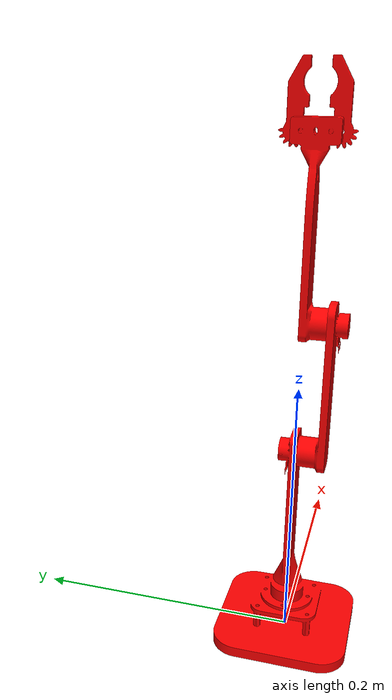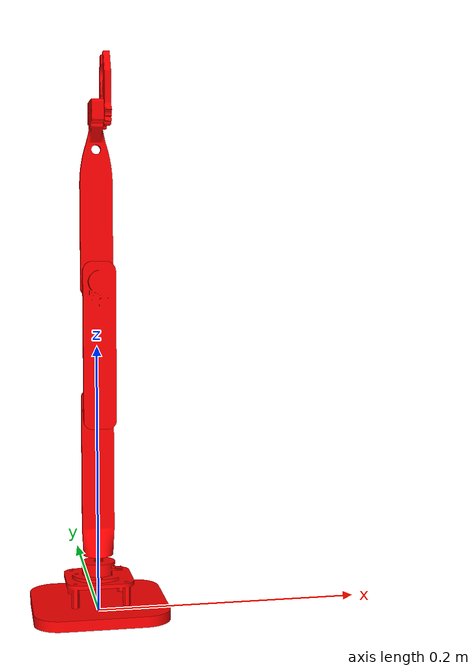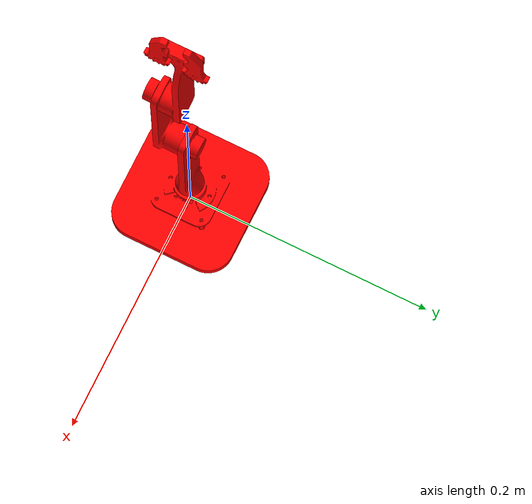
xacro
<?xml version="1.0" ?>
<robot name="twin" xmlns:xacro="http://www.ros.org/wiki/xacro">
    <xacro:include filename="$(find twin_description)/urdf/arm_sim.xacro" />
    <xacro:include filename="$(find twin_description)/urdf/gazebo.xacro"/>
    <xacro:include filename="$(find twin_description)/urdf/ros2control.xacro"/>
</robot>

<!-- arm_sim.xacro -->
<robot name="twin" xmlns:xacro="http://www.ros.org/wiki/xacro">

    <link name="world"/>

    <link name="base_link">
    <inertial>
        <origin xyz="0 0 0" rpy="0 0 0"/>
        <mass value="5.0"/>
        <inertia ixx="0.1" ixy="0.0" ixz="0.0" iyy="0.1" iyz="0.0" izz="0.1"/>
    </inertial>
    <visual>
        <origin xyz="0.0 0.0 0.0" rpy="0.0 0.0 0.0"/>
        <geometry>
            <mesh filename="package://twin_description/meshes/base_link.stl" scale="0.001 0.001 0.001"/>
        </geometry>
        <material name="red">
            <color rgba="1.0 0.0 0.0 1.0"/>
        </material>
    </visual>
    <collision>
        <origin xyz="0.0 0.0 0.0" rpy="0.0 0.0 0.0"/>
        <geometry>
            <mesh filename="package://twin_description/meshes/base_link.stl" scale="0.001 0.001 0.001"/>
        </geometry>
    </collision>
    </link>

    <joint name="virtual_joint" type="fixed">
        <origin xyz="0.0 0.0 0.0" rpy="0.0 0.0 0.0"/>
        <parent link="world"/>
        <child link="base_link"/>
    </joint>

    <link name="link_one">
    <inertial>
        <origin xyz="0.0 0.0 -0.0" rpy="0.0 0.0 0.0"/>
        <mass value="2.0"/>
        <inertia ixx="0.1" ixy="0.0" ixz="0.0" iyy="0.1" iyz="0.0" izz="0.1"/>
    </inertial>
    <visual>
        <origin xyz="0.0 0.0 -0.0" rpy="0.0 0.0 0.0"/>
        <geometry>
            <mesh filename="package://twin_description/meshes/link_one.stl" scale="0.001 0.001 0.001"/>
        </geometry>
        <material name="red">
            <color rgba="1.0 0.0 0.0 1.0"/>
        </material>
    </visual>
    <collision>
        <origin xyz="0.0 0.0 -0.0" rpy="0.0 0.0 0.0"/>
        <geometry>
            <mesh filename="package://twin_description/meshes/link_one.stl" scale="0.001 0.001 0.001"/>
        </geometry>
    </collision>
    </link>

    <joint name="joint_1" type="revolute">
        <origin rpy="0 0 0" xyz="0 0 0.0"/>
        <parent link="base_link"/>
        <child link="link_one"/>
        <axis xyz="0 0 1"/>
        <limit effort="30.0" lower="-2.356" upper="2.356" velocity="10.0"/>
    </joint>

    <link name="link_two">
    <inertial>
        <origin xyz="0.0 0.0025 -0.1526" rpy="0.0 0.0 0.0"/>
        <mass value="2.0"/>
        <inertia ixx="0.1" ixy="0.0" ixz="0.0" iyy="0.1" iyz="0.0" izz="0.1"/>
    </inertial>
    <visual>
        <origin xyz="0.0 0.0025 -0.1526" rpy="0.0 0.0 0.0"/>
        <geometry>
            <mesh filename="package://twin_description/meshes/link_two.stl" scale="0.001 0.001 0.001"/>
        </geometry>
        <material name="red">
            <color rgba="1.0 0.0 0.0 1.0"/>
        </material>
    </visual>
    <collision>
        <origin xyz="0.0 0.0025 -0.1526" rpy="0.0 0.0 0.0"/>
        <geometry>
            <mesh filename="package://twin_description/meshes/link_two.stl" scale="0.001 0.001 0.001"/>
        </geometry>
    </collision>
    </link>

    <joint name="joint_2" type="revolute">
        <origin rpy="0 0 0" xyz="0.0 -0.0025 0.1526"/>
        <parent link="link_one"/>
        <child link="link_two"/>
        <axis xyz="0 1 0"/>
        <limit effort="30.0" lower="-2.356" upper="2.356" velocity="10.0"/>
    </joint>

    <link name="link_three">
    <inertial>
        <origin xyz="0.0 0.0175 -0.0964" rpy="0.0 0.0 0.0"/>
        <mass value="2.0"/>
        <inertia ixx="0.1" ixy="0.0" ixz="0.0" iyy="0.1" iyz="0.0" izz="0.1"/>
    </inertial>
    <visual>
        <origin xyz="0.0 0.0185 -0.249" rpy="0.0 0.0 0.0"/>
        <geometry>
            <mesh filename="package://twin_description/meshes/link_three_sim.stl" scale="0.001 0.001 0.001"/>
        </geometry>
        <material name="red">
            <color rgba="1.0 0.0 0.0 1.0"/>
        </material>
    </visual>
    <collision>
        <origin xyz="0.0 0.0185 -0.249" rpy="0.0 0.0 0.0"/>
        <geometry>
            <mesh filename="package://twin_description/meshes/link_three_sim.stl" scale="0.001 0.001 0.001"/>
        </geometry>
    </collision>
    </link>

    <joint name="joint_3" type="revolute">
        <origin rpy="0 0 0" xyz="0.0 -0.0175 0.0964"/>
        <parent link="link_two"/>
        <child link="link_three"/>
        <axis xyz="0 1 0"/>
        <limit effort="30.0" lower="-2.356" upper="2.356" velocity="10.0"/>
    </joint>

    <link name="right_gripper">
    <inertial>
        <origin xyz="-0.0 -0.008 -0.37" rpy="0.0 0.0 0.0"/>
        <mass value="1.0"/>
        <inertia ixx="0.1" ixy="0.0" ixz="0.0" iyy="0.1" iyz="0.0" izz="0.1"/>
    </inertial>
    <visual>
        <origin xyz="-0.0 -0.008 -0.37" rpy="0.0 0.0 0.0"/>
        <geometry>
            <mesh filename="package://twin_description/meshes/right_gripper.stl" scale="0.001 0.001 0.001"/>
        </geometry>
        <material name="red">
            <color rgba="1.0 0.0 0.0 1.0"/>
        </material>
    </visual>
    <collision>
        <origin xyz="-0.0 -0.008 -0.37" rpy="0.0 0.0 0.0"/>
        <geometry>
            <mesh filename="package://twin_description/meshes/right_gripper.stl" scale="0.001 0.001 0.001"/>
        </geometry>
    </collision>
    </link>

    <joint name="joint_4" type="revolute">
        <origin rpy="0 0 0" xyz="0.0 0.030 0.12"/>
        <parent link="link_three"/>
        <child link="right_gripper"/>
        <axis xyz="1 0 0"/>
        <limit effort="30.0" lower="-2.356" upper="0.13" velocity="10.0"/>
    </joint>

    <link name="left_gripper">
    <inertial>
        <origin xyz="-0.0 0.008 -0.37" rpy="0.0 0.0 0.0"/>
        <mass value="1.0"/>
        <inertia ixx="0.1" ixy="0.0" ixz="0.0" iyy="0.1" iyz="0.0" izz="0.1"/>
    </inertial>
    <visual>
        <origin xyz="-0.0 0.008 -0.37" rpy="0.0 0.0 0.0"/>
        <geometry>
            <mesh filename="package://twin_description/meshes/left_gripper.stl" scale="0.001 0.001 0.001"/>
        </geometry>
        <material name="red">
            <color rgba="1.0 0.0 0.0 1.0"/>
        </material>
    </visual>
    <collision>
        <origin xyz="-0.0 0.008 -0.37" rpy="0.0 0.0 0.0"/>
        <geometry>
            <mesh filename="package://twin_description/meshes/left_gripper.stl" scale="0.001 0.001 0.001"/>
        </geometry>
    </collision>
    </link>

    <joint name="joint_5" type="revolute">
        <origin rpy="0 0 0" xyz="0.0 0.007 0.12"/>
        <parent link="link_three"/>
        <child link="left_gripper"/>
        <axis xyz="1 0 0"/>
        <limit effort="30.0" lower="-0.13" upper="2.356" velocity="10.0"/>
        <mimic joint="joint_4" multiplier="-1"/>
    </joint>

</robot>
